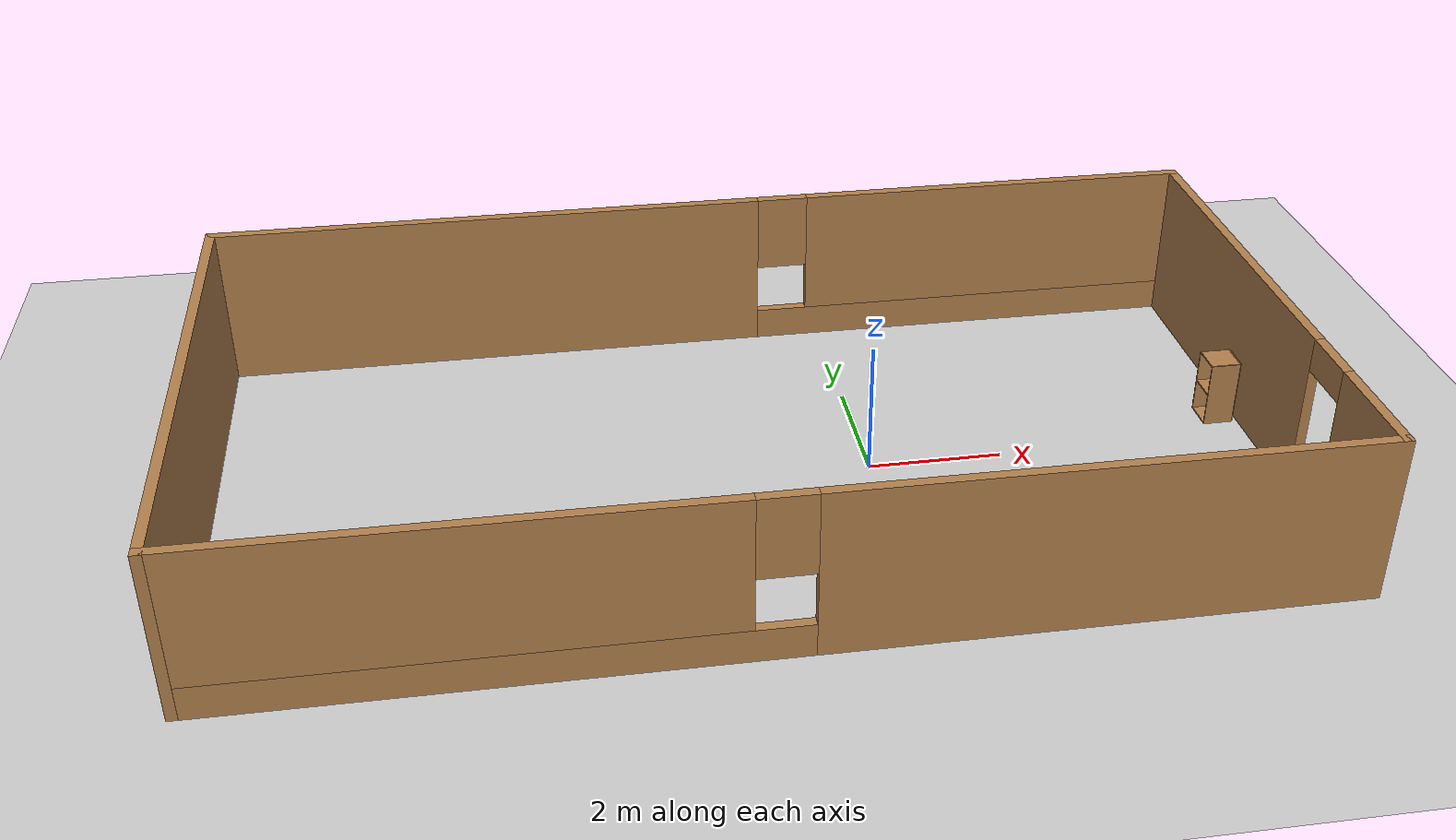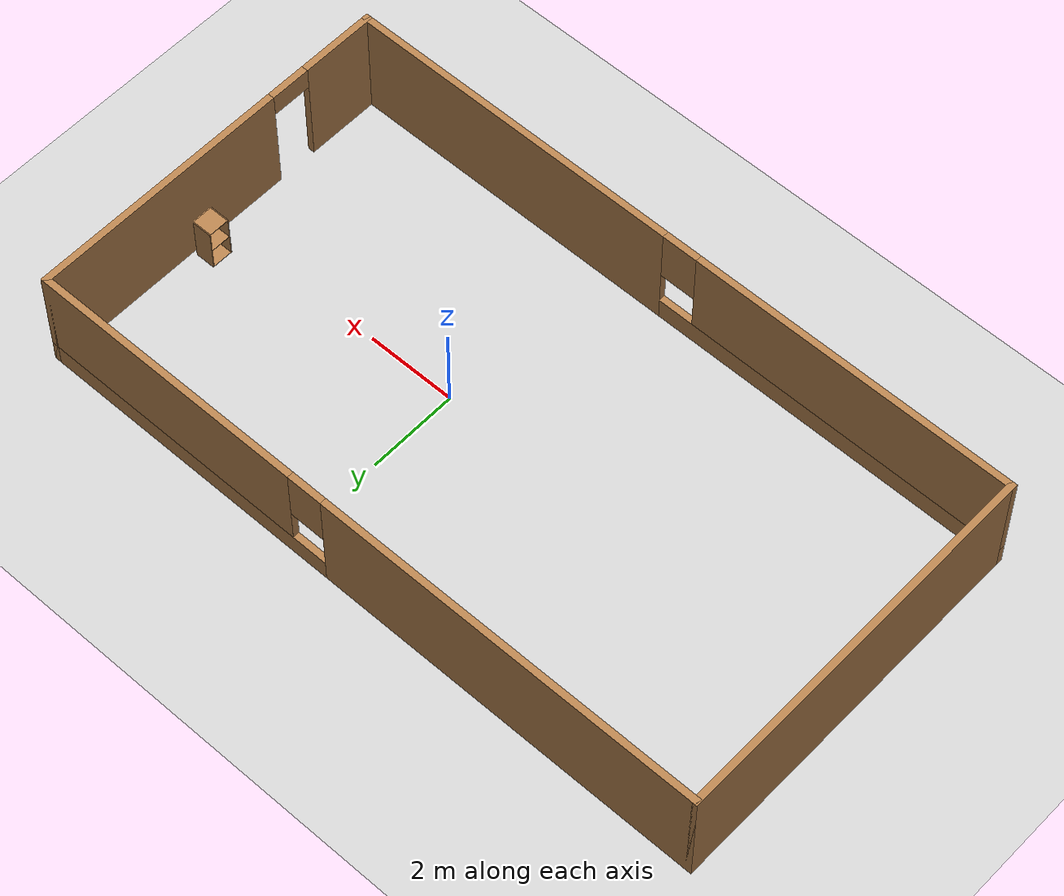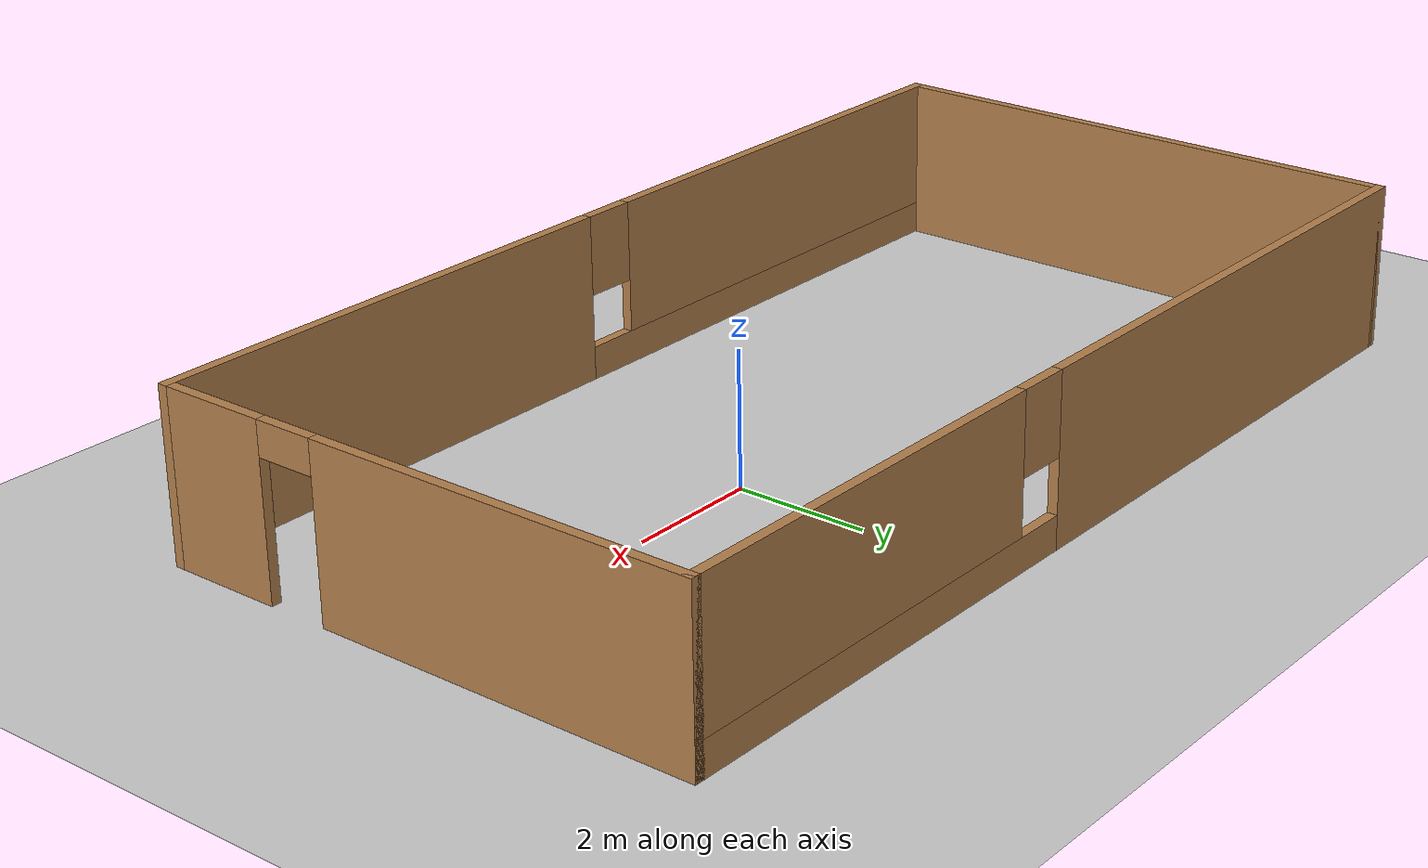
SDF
<sdf version="1.7">
 <world name="default">
  <light name="sun" type="directional">
   <pose>0 0 10 0 -0 0</pose>
   <diffuse>0.8 0.8 0.8 1</diffuse>
   <specular>0.2 0.2 0.2 1</specular>
   <attenuation>
    <range>1000</range>
    <constant>0.9</constant>
    <linear>0.01</linear>
    <quadratic>0.001</quadratic>
   </attenuation>
   <direction>-0.5 0.1 -0.9</direction>
   <spot><inner_angle>0</inner_angle><outer_angle>0</outer_angle><falloff>0</falloff></spot>
  </light>
  <model name="ground_plane">
   <static>1</static>
   <link name="link">
    <collision name="collision">
     <geometry><plane><normal>0 0 1</normal><size>100 100</size></plane></geometry>
     <surface><friction><ode><mu>100</mu><mu2>50</mu2></ode></friction></surface>
    </collision>
    <visual name="visual">
     <cast_shadows>0</cast_shadows>
     <geometry><plane><normal>0 0 1</normal><size>100 100</size></plane></geometry>
     <material>
      <script><uri>file://media/materials/scripts/gazebo.material</uri><name>Gazebo/Grey</name></script>
     </material>
    </visual>
   </link>
  </model>
  <gravity>0 0 -9.8</gravity>
  <magnetic_field>6e-06 2.3e-05 -4.2e-05</magnetic_field>
  <atmosphere type="adiabatic"/>
  <physics type="ode">
   <max_step_size>0.001</max_step_size>
   <real_time_factor>1</real_time_factor>
   <real_time_update_rate>1000</real_time_update_rate>
  </physics>
  <scene><ambient>0.4 0.4 0.4 1</ambient><background>0.7 0.7 0.7 1</background><shadows>1</shadows></scene>
  <audio><device>default</device></audio>
  <spherical_coordinates>
   <surface_model>EARTH_WGS84</surface_model>
   <latitude_deg>0</latitude_deg>
   <longitude_deg>0</longitude_deg>
   <elevation>0</elevation>
   <heading_deg>0</heading_deg>
  </spherical_coordinates>
  <model name="test">
   <pose>-1.81188 0.06495 0 0 -0 0</pose>
   <link name="Wall_10">
    <pose>0 4.175 0 0 -0 0</pose>
    <visual name="Wall_10_Visual_0">
     <pose>-3.54074 0 1.25 0 -0 0</pose>
     <geometry><box><size>8.66853 0.15 2.5</size></box></geometry>
     <material>
      <script><uri>file://media/materials/scripts/gazebo.material</uri><name>Gazebo/Wood</name></script>
      <ambient>1 1 1 1</ambient>
     </material>
     <meta><layer>0</layer></meta>
    </visual>
    <collision name="Wall_10_Collision_0">
     <geometry><box><size>8.66853 0.15 2.5</size></box></geometry>
     <pose>-3.54074 0 1.25 0 -0 0</pose>
    </collision>
    <visual name="Wall_10_Visual_1">
     <pose>4.33426 0 0.25 0 -0 0</pose>
     <geometry><box><size>7.08147 0.15 0.5</size></box></geometry>
     <material>
      <script><uri>file://media/materials/scripts/gazebo.material</uri><name>Gazebo/Wood</name></script>
      <ambient>1 1 1 1</ambient>
     </material>
     <meta><layer>0</layer></meta>
    </visual>
    <collision name="Wall_10_Collision_1">
     <geometry><box><size>7.08147 0.15 0.5</size></box></geometry>
     <pose>4.33426 0 0.25 0 -0 0</pose>
    </collision>
    <visual name="Wall_10_Visual_2">
     <pose>4.73426 0 1.5 0 -0 0</pose>
     <geometry><box><size>6.28147 0.15 2</size></box></geometry>
     <material>
      <script><uri>file://media/materials/scripts/gazebo.material</uri><name>Gazebo/Wood</name></script>
      <ambient>1 1 1 1</ambient>
     </material>
     <meta><layer>0</layer></meta>
    </visual>
    <collision name="Wall_10_Collision_2">
     <geometry><box><size>6.28147 0.15 2</size></box></geometry>
     <pose>4.73426 0 1.5 0 -0 0</pose>
    </collision>
    <visual name="Wall_10_Visual_3">
     <pose>1.19353 0 1.9 0 -0 0</pose>
     <geometry><box><size>0.8 0.15 1.2</size></box></geometry>
     <material>
      <script><uri>file://media/materials/scripts/gazebo.material</uri><name>Gazebo/Wood</name></script>
      <ambient>1 1 1 1</ambient>
     </material>
     <meta><layer>0</layer></meta>
    </visual>
    <collision name="Wall_10_Collision_3">
     <geometry><box><size>0.8 0.15 1.2</size></box></geometry>
     <pose>1.19353 0 1.9 0 -0 0</pose>
    </collision>
   </link>
   <link name="Wall_11">
    <pose>7.8 -0 0 0 -0 -1.5708</pose>
    <visual name="Wall_11_Visual_0">
     <pose>-1.33259 0 1.25 0 -0 0</pose>
     <geometry><box><size>5.83482 0.15 2.5</size></box></geometry>
     <material>
      <script><uri>file://media/materials/scripts/gazebo.material</uri><name>Gazebo/Wood</name></script>
      <ambient>1 1 1 1</ambient>
     </material>
     <meta><layer>0</layer></meta>
    </visual>
    <collision name="Wall_11_Collision_0">
     <geometry><box><size>5.83482 0.15 2.5</size></box></geometry>
     <pose>-1.33259 0 1.25 0 -0 0</pose>
    </collision>
    <visual name="Wall_11_Visual_1">
     <pose>3.36741 0 1.25 0 -0 0</pose>
     <geometry><box><size>1.76518 0.15 2.5</size></box></geometry>
     <material>
      <script><uri>file://media/materials/scripts/gazebo.material</uri><name>Gazebo/Wood</name></script>
      <ambient>1 1 1 1</ambient>
     </material>
     <meta><layer>0</layer></meta>
    </visual>
    <collision name="Wall_11_Collision_1">
     <geometry><box><size>1.76518 0.15 2.5</size></box></geometry>
     <pose>3.36741 0 1.25 0 -0 0</pose>
    </collision>
    <visual name="Wall_11_Visual_2">
     <pose>2.03482 0 2.25 0 -0 0</pose>
     <geometry><box><size>0.9 0.15 0.5</size></box></geometry>
     <material>
      <script><uri>file://media/materials/scripts/gazebo.material</uri><name>Gazebo/Wood</name></script>
      <ambient>1 1 1 1</ambient>
     </material>
     <meta><layer>0</layer></meta>
    </visual>
    <collision name="Wall_11_Collision_2">
     <geometry><box><size>0.9 0.15 0.5</size></box></geometry>
     <pose>2.03482 0 2.25 0 -0 0</pose>
    </collision>
   </link>
   <link name="Wall_12">
    <pose>0 -4.175 0 0 -0 3.14159</pose>
    <visual name="Wall_12_Visual_0">
     <pose>-4.04598 0 1.25 0 -0 0</pose>
     <geometry><box><size>7.65803 0.15 2.5</size></box></geometry>
     <material>
      <script><uri>file://media/materials/scripts/gazebo.material</uri><name>Gazebo/Wood</name></script>
      <ambient>1 1 1 1</ambient>
     </material>
     <meta><layer>0</layer></meta>
    </visual>
    <collision name="Wall_12_Collision_0">
     <geometry><box><size>7.65803 0.15 2.5</size></box></geometry>
     <pose>-4.04598 0 1.25 0 -0 0</pose>
    </collision>
    <visual name="Wall_12_Visual_1">
     <pose>3.82902 0 0.25 0 -0 0</pose>
     <geometry><box><size>8.09197 0.15 0.5</size></box></geometry>
     <material>
      <script><uri>file://media/materials/scripts/gazebo.material</uri><name>Gazebo/Wood</name></script>
      <ambient>1 1 1 1</ambient>
     </material>
     <meta><layer>0</layer></meta>
    </visual>
    <collision name="Wall_12_Collision_1">
     <geometry><box><size>8.09197 0.15 0.5</size></box></geometry>
     <pose>3.82902 0 0.25 0 -0 0</pose>
    </collision>
    <visual name="Wall_12_Visual_2">
     <pose>4.22902 0 1.5 0 -0 0</pose>
     <geometry><box><size>7.29197 0.15 2</size></box></geometry>
     <material>
      <script><uri>file://media/materials/scripts/gazebo.material</uri><name>Gazebo/Wood</name></script>
      <ambient>1 1 1 1</ambient>
     </material>
     <meta><layer>0</layer></meta>
    </visual>
    <collision name="Wall_12_Collision_2">
     <geometry><box><size>7.29197 0.15 2</size></box></geometry>
     <pose>4.22902 0 1.5 0 -0 0</pose>
    </collision>
    <visual name="Wall_12_Visual_3">
     <pose>0.183033 0 1.9 0 -0 0</pose>
     <geometry><box><size>0.8 0.15 1.2</size></box></geometry>
     <material>
      <script><uri>file://media/materials/scripts/gazebo.material</uri><name>Gazebo/Wood</name></script>
      <ambient>1 1 1 1</ambient>
     </material>
     <meta><layer>0</layer></meta>
    </visual>
    <collision name="Wall_12_Collision_3">
     <geometry><box><size>0.8 0.15 1.2</size></box></geometry>
     <pose>0.183033 0 1.9 0 -0 0</pose>
    </collision>
   </link>
   <link name="Wall_13">
    <collision name="Wall_13_Collision">
     <geometry><box><size>8.5 0.15 2.5</size></box></geometry>
     <pose>0 0 1.25 0 -0 0</pose>
    </collision>
    <visual name="Wall_13_Visual">
     <pose>0 0 1.25 0 -0 0</pose>
     <geometry><box><size>8.5 0.15 2.5</size></box></geometry>
     <material>
      <script><uri>file://media/materials/scripts/gazebo.material</uri><name>Gazebo/Wood</name></script>
      <ambient>1 1 1 1</ambient>
     </material>
     <meta><layer>0</layer></meta>
    </visual>
    <pose>-7.8 -0 0 0 -0 1.5708</pose>
   </link>
   <static>1</static>
  </model>
  <model name="cabinet">
   <static>1</static>
   <link name="cabinet_bottom_plate">
    <inertial>
     <pose>0 0 -1 0 -0 0</pose>
     <inertia><ixx>2.05</ixx><ixy>0</ixy><ixz>0</ixz><iyy>2.05</iyy><iyz>0</iyz><izz>2.05</izz></inertia>
     <mass>25</mass>
    </inertial>
    <collision name="cabinet_bottom_plate_geom">
     <pose>0 0 0.01 0 -0 0</pose>
     <geometry><box><size>0.45 0.45 0.02</size></box></geometry>
    </collision>
    <visual name="cabinet_bottom_plate_geom_visual">
     <pose>0 0 0.01 0 -0 0</pose>
     <geometry><box><size>0.45 0.45 0.02</size></box></geometry>
     <material>
      <script><uri>file://media/materials/scripts/gazebo.material</uri><name>Gazebo/Wood</name></script>
     </material>
    </visual>
    <collision name="cabinet_bottom_plate_geom_cabinet_back_plate">
     <pose>0.235 0 0.51 0 -0 0</pose>
     <geometry><box><size>0.02 0.45 1.02</size></box></geometry>
    </collision>
    <visual name="cabinet_bottom_plate_geom_cabinet_back_plate_visual">
     <pose>0.235 0 0.51 0 -0 0</pose>
     <geometry><box><size>0.02 0.45 1.02</size></box></geometry>
     <material>
      <script><uri>file://media/materials/scripts/gazebo.material</uri><name>Gazebo/Wood</name></script>
     </material>
    </visual>
    <collision name="cabinet_bottom_plate_geom_cabinet_left_plate">
     <pose>0 0.235 0.51 0 -0 0</pose>
     <geometry><box><size>0.45 0.02 1.02</size></box></geometry>
    </collision>
    <visual name="cabinet_bottom_plate_geom_cabinet_left_plate_visual">
     <pose>0 0.235 0.51 0 -0 0</pose>
     <geometry><box><size>0.45 0.02 1.02</size></box></geometry>
     <material>
      <script><uri>file://media/materials/scripts/gazebo.material</uri><name>Gazebo/Wood</name></script>
     </material>
    </visual>
    <collision name="cabinet_bottom_plate_geom_cabinet_middle_plate">
     <pose>0 0 0.51 0 -0 0</pose>
     <geometry><box><size>0.45 0.45 0.02</size></box></geometry>
    </collision>
    <visual name="cabinet_bottom_plate_geom_cabinet_middle_plate_visual">
     <pose>0 0 0.51 0 -0 0</pose>
     <geometry><box><size>0.45 0.45 0.02</size></box></geometry>
     <material>
      <script><uri>file://media/materials/scripts/gazebo.material</uri><name>Gazebo/Wood</name></script>
     </material>
    </visual>
    <collision name="cabinet_bottom_plate_geom_cabinet_right_plate">
     <pose>0 -0.235 0.51 0 -0 0</pose>
     <geometry><box><size>0.45 0.02 1.02</size></box></geometry>
    </collision>
    <visual name="cabinet_bottom_plate_geom_cabinet_right_plate_visual">
     <pose>0 -0.235 0.51 0 -0 0</pose>
     <geometry><box><size>0.45 0.02 1.02</size></box></geometry>
     <material>
      <script><uri>file://media/materials/scripts/gazebo.material</uri><name>Gazebo/Wood</name></script>
     </material>
    </visual>
    <collision name="cabinet_bottom_plate_geom_cabinet_top_plate">
     <pose>0 0 1.01 0 -0 0</pose>
     <geometry><box><size>0.45 0.45 0.02</size></box></geometry>
    </collision>
    <visual name="cabinet_bottom_plate_geom_cabinet_top_plate_visual">
     <pose>0 0 1.01 0 -0 0</pose>
     <geometry><box><size>0.45 0.45 0.02</size></box></geometry>
     <material>
      <script><uri>file://media/materials/scripts/gazebo.material</uri><name>Gazebo/Wood</name></script>
     </material>
    </visual>
   </link>
   <pose>5.59918 0.606479 0 0 -0 0</pose>
  </model>
  <model name="realsense_d435">
   <static>true</static>
   <link name="camera_link">
    <sensor name="depth_camera" type="depth">
     <update_rate>30</update_rate>
     <camera>
      <horizontal_fov>1.047</horizontal_fov>
      <image><width>640</width><height>480</height><format>R8G8B8</format></image>
      <clip><near>0.1</near><far>10.0</far></clip>
      <depth_camera><depth_near_clip>0.1</depth_near_clip><depth_far_clip>10.0</depth_far_clip></depth_camera>
     </camera>
     <plugin name="realsense_plugin" filename="librealsense_plugin.so"/>
    </sensor>
   </link>
  </model>
  <model name="velodyne_vlp16">
   <pose>-5 1 2 0 0 0</pose>
   <link name="link">
    <sensor name="lidar" type="ray">
     <visualize>true</visualize>
     <update_rate>10</update_rate>
     <ray>
      <scan>
       <horizontal>
        <samples>360</samples>
        <resolution>1</resolution>
        <min_angle>-3.14159</min_angle>
        <max_angle>3.14159</max_angle>
       </horizontal>
       <vertical>
        <samples>16</samples>
        <resolution>1</resolution>
        <min_angle>-0.261799</min_angle>
        <max_angle>0.261799</max_angle>
       </vertical>
      </scan>
      <range><min>0.1</min><max>100</max><resolution>0.01</resolution></range>
      <noise><type>gaussian</type><mean>0.0</mean><stddev>0.01</stddev></noise>
     </ray>
     <plugin name="lidar_plugin" filename="libgazebo_ros_ray_sensor.so">
      <ros><namespace>/lidar</namespace></ros>
      <frame_name>lidar_link</frame_name>
      <topic_name>points</topic_name>
      <output_type>sensor_msgs/PointCloud2</output_type>
     </plugin>
    </sensor>
   </link>
  </model>
 </world>
</sdf>
